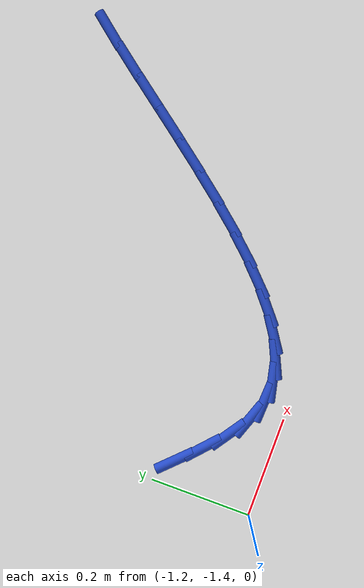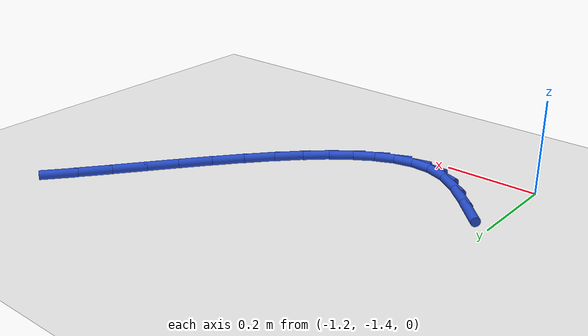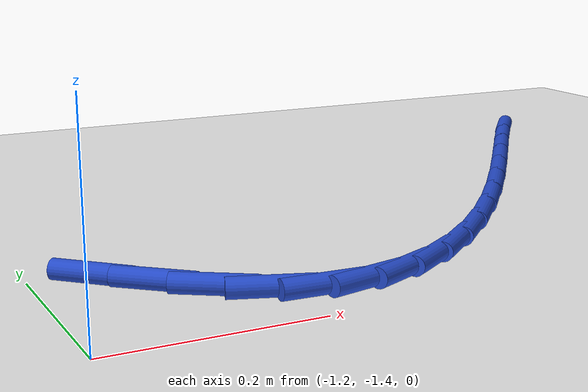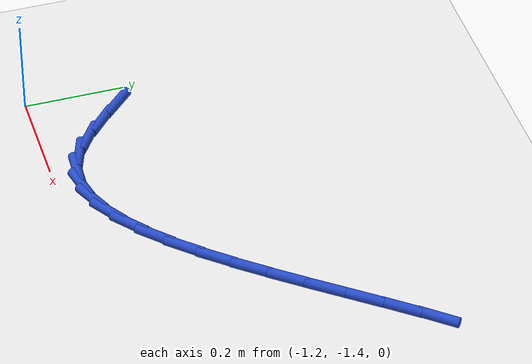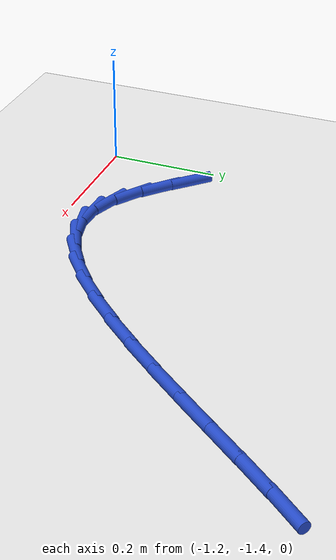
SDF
<sdf version="1.6">
 <world name="default">
  <model name="ground_plane">
   <static>1</static>
   <link name="link">
    <collision name="collision">
     <geometry><plane><normal>0 0 1</normal><size>100 100</size></plane></geometry>
     <surface><friction><ode><mu>100</mu><mu2>50</mu2></ode></friction></surface>
    </collision>
    <visual name="visual">
     <cast_shadows>0</cast_shadows>
     <geometry><plane><normal>0 0 1</normal><size>100 100</size></plane></geometry>
     <material>
      <script><uri>file://media/materials/scripts/gazebo.material</uri><name>Gazebo/WhiteGlow</name></script>
     </material>
    </visual>
   </link>
  </model>
  <model name="line">
   <link name="link_107">
    <pose>-1.1473400962004658 -1.2265670197621517 0.01 0 1.57 -0.7893298609541206</pose>
    <collision name="collision">
     <geometry><cylinder><radius>0.01</radius><length>0.08</length></cylinder></geometry>
    </collision>
    <visual name="visual">
     <material>
      <script><name>Gazebo/Blue</name><uri>file://media/materials/scripts/gazebo.material</uri></script>
     </material>
     <geometry><cylinder><radius>0.01</radius><length>0.08</length></cylinder></geometry>
    </visual>
   </link>
   <link name="link_108">
    <pose>-1.1049639329435696 -1.2692777205583399 0.01 0 1.57 -0.7365368606894972</pose>
    <collision name="collision">
     <geometry><cylinder><radius>0.01</radius><length>0.08</length></cylinder></geometry>
    </collision>
    <visual name="visual">
     <material>
      <script><name>Gazebo/Blue</name><uri>file://media/materials/scripts/gazebo.material</uri></script>
     </material>
     <geometry><cylinder><radius>0.01</radius><length>0.08</length></cylinder></geometry>
    </visual>
   </link>
   <link name="link_109">
    <pose>-1.0636828160984073 -1.3067097470514901 0.01 0 1.57 -0.5982695090122924</pose>
    <collision name="collision">
     <geometry><cylinder><radius>0.01</radius><length>0.08</length></cylinder></geometry>
    </collision>
    <visual name="visual">
     <material>
      <script><name>Gazebo/Blue</name><uri>file://media/materials/scripts/gazebo.material</uri></script>
     </material>
     <geometry><cylinder><radius>0.01</radius><length>0.08</length></cylinder></geometry>
    </visual>
   </link>
   <link name="link_110">
    <pose>-1.0225679897288245 -1.3347335869826762 0.01 0 1.57 -0.34609540625830315</pose>
    <collision name="collision">
     <geometry><cylinder><radius>0.01</radius><length>0.08</length></cylinder></geometry>
    </collision>
    <visual name="visual">
     <material>
      <script><name>Gazebo/Blue</name><uri>file://media/materials/scripts/gazebo.material</uri></script>
     </material>
     <geometry><cylinder><radius>0.01</radius><length>0.08</length></cylinder></geometry>
    </visual>
   </link>
   <link name="link_111">
    <pose>-0.9808018425256739 -1.3497948733858416 0.01 0 1.57 -0.04794052591498494</pose>
    <collision name="collision">
     <geometry><cylinder><radius>0.01</radius><length>0.08</length></cylinder></geometry>
    </collision>
    <visual name="visual">
     <material>
      <script><name>Gazebo/Blue</name><uri>file://media/materials/scripts/gazebo.material</uri></script>
     </material>
     <geometry><cylinder><radius>0.01</radius><length>0.08</length></cylinder></geometry>
    </visual>
   </link>
   <link name="link_112">
    <pose>-0.9382426434096215 -1.3518367482900133 0.01 0 1.57 0.22110773160332825</pose>
    <collision name="collision">
     <geometry><cylinder><radius>0.01</radius><length>0.08</length></cylinder></geometry>
    </collision>
    <visual name="visual">
     <material>
      <script><name>Gazebo/Blue</name><uri>file://media/materials/scripts/gazebo.material</uri></script>
     </material>
     <geometry><cylinder><radius>0.01</radius><length>0.08</length></cylinder></geometry>
    </visual>
   </link>
   <link name="link_113">
    <pose>-0.895002742747252 -1.3421171608503804 0.01 0 1.57 0.4324407453227088</pose>
    <collision name="collision">
     <geometry><cylinder><radius>0.01</radius><length>0.08</length></cylinder></geometry>
    </collision>
    <visual name="visual">
     <material>
      <script><name>Gazebo/Blue</name><uri>file://media/materials/scripts/gazebo.material</uri></script>
     </material>
     <geometry><cylinder><radius>0.01</radius><length>0.08</length></cylinder></geometry>
    </visual>
   </link>
   <link name="link_114">
    <pose>-0.8511949482248954 -1.321896426735967 0.01 0 1.57 0.5872667801583888</pose>
    <collision name="collision">
     <geometry><cylinder><radius>0.01</radius><length>0.08</length></cylinder></geometry>
    </collision>
    <visual name="visual">
     <material>
      <script><name>Gazebo/Blue</name><uri>file://media/materials/scripts/gazebo.material</uri></script>
     </material>
     <geometry><cylinder><radius>0.01</radius><length>0.08</length></cylinder></geometry>
    </visual>
   </link>
   <link name="link_115">
    <pose>-0.8069320675288804 -1.2924348616157968 0.01 0 1.57 0.6983146437871968</pose>
    <collision name="collision">
     <geometry><cylinder><radius>0.01</radius><length>0.08</length></cylinder></geometry>
    </collision>
    <visual name="visual">
     <material>
      <script><name>Gazebo/Blue</name><uri>file://media/materials/scripts/gazebo.material</uri></script>
     </material>
     <geometry><cylinder><radius>0.01</radius><length>0.08</length></cylinder></geometry>
    </visual>
   </link>
   <link name="link_116">
    <pose>-0.7623269083455345 -1.254992781158892 0.01 0 1.57 0.7778435520289986</pose>
    <collision name="collision">
     <geometry><cylinder><radius>0.01</radius><length>0.08</length></cylinder></geometry>
    </collision>
    <visual name="visual">
     <material>
      <script><name>Gazebo/Blue</name><uri>file://media/materials/scripts/gazebo.material</uri></script>
     </material>
     <geometry><cylinder><radius>0.01</radius><length>0.08</length></cylinder></geometry>
    </visual>
   </link>
   <link name="link_117">
    <pose>-0.7174922783611865 -1.2108305010342766 0.01 0 1.57 0.8347468802011556</pose>
    <collision name="collision">
     <geometry><cylinder><radius>0.01</radius><length>0.08</length></cylinder></geometry>
    </collision>
    <visual name="visual">
     <material>
      <script><name>Gazebo/Blue</name><uri>file://media/materials/scripts/gazebo.material</uri></script>
     </material>
     <geometry><cylinder><radius>0.01</radius><length>0.08</length></cylinder></geometry>
    </visual>
   </link>
   <link name="link_118">
    <pose>-0.6725409852621661 -1.1612083369109747 0.01 0 1.57 0.874921987681903</pose>
    <collision name="collision">
     <geometry><cylinder><radius>0.01</radius><length>0.08</length></cylinder></geometry>
    </collision>
    <visual name="visual">
     <material>
      <script><name>Gazebo/Blue</name><uri>file://media/materials/scripts/gazebo.material</uri></script>
     </material>
     <geometry><cylinder><radius>0.01</radius><length>0.08</length></cylinder></geometry>
    </visual>
   </link>
   <link name="link_119">
    <pose>-0.6275858367348012 -1.1073866044580096 0.01 0 1.57 0.9021283271725014</pose>
    <collision name="collision">
     <geometry><cylinder><radius>0.01</radius><length>0.08</length></cylinder></geometry>
    </collision>
    <visual name="visual">
     <material>
      <script><name>Gazebo/Blue</name><uri>file://media/materials/scripts/gazebo.material</uri></script>
     </material>
     <geometry><cylinder><radius>0.01</radius><length>0.08</length></cylinder></geometry>
    </visual>
   </link>
   <link name="link_120">
    <pose>-0.5827396404654205 -1.0506256193444041 0.01 0 1.57 0.9186509998514448</pose>
    <collision name="collision">
     <geometry><cylinder><radius>0.01</radius><length>0.08</length></cylinder></geometry>
    </collision>
    <visual name="visual">
     <material>
      <script><name>Gazebo/Blue</name><uri>file://media/materials/scripts/gazebo.material</uri></script>
     </material>
     <geometry><cylinder><radius>0.01</radius><length>0.08</length></cylinder></geometry>
    </visual>
   </link>
   <link name="link_121">
    <pose>-0.5381152041403526 -0.9921856972391822 0.01 0 1.57 0.9257099939630972</pose>
    <collision name="collision">
     <geometry><cylinder><radius>0.01</radius><length>0.08</length></cylinder></geometry>
    </collision>
    <visual name="visual">
     <material>
      <script><name>Gazebo/Blue</name><uri>file://media/materials/scripts/gazebo.material</uri></script>
     </material>
     <geometry><cylinder><radius>0.01</radius><length>0.08</length></cylinder></geometry>
    </visual>
   </link>
   <link name="link_122">
    <pose>-0.4938253354459252 -0.9333271538113659 0.01 0 1.57 0.9236663976866242</pose>
    <collision name="collision">
     <geometry><cylinder><radius>0.01</radius><length>0.08</length></cylinder></geometry>
    </collision>
    <visual name="visual">
     <material>
      <script><name>Gazebo/Blue</name><uri>file://media/materials/scripts/gazebo.material</uri></script>
     </material>
     <geometry><cylinder><radius>0.01</radius><length>0.08</length></cylinder></geometry>
    </visual>
   </link>
   <link name="link_123">
    <pose>-0.4499828420684688 -0.875310304729981 0.01 0 1.57 0.9120640662868874</pose>
    <collision name="collision">
     <geometry><cylinder><radius>0.01</radius><length>0.08</length></cylinder></geometry>
    </collision>
    <visual name="visual">
     <material>
      <script><name>Gazebo/Blue</name><uri>file://media/materials/scripts/gazebo.material</uri></script>
     </material>
     <geometry><cylinder><radius>0.01</radius><length>0.08</length></cylinder></geometry>
    </visual>
   </link>
   <link name="link_124">
    <pose>-0.406700531694311 -0.8193954656640496 0.01 0 1.57 0.8896079604553487</pose>
    <collision name="collision">
     <geometry><cylinder><radius>0.01</radius><length>0.08</length></cylinder></geometry>
    </collision>
    <visual name="visual">
     <material>
      <script><name>Gazebo/Blue</name><uri>file://media/materials/scripts/gazebo.material</uri></script>
     </material>
     <geometry><cylinder><radius>0.01</radius><length>0.08</length></cylinder></geometry>
    </visual>
   </link>
  </model>
 </world>
</sdf>
